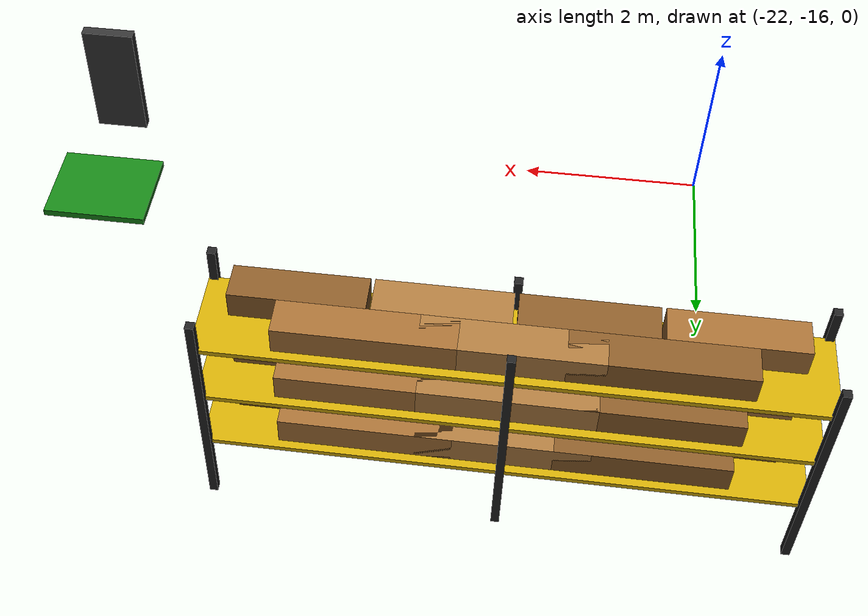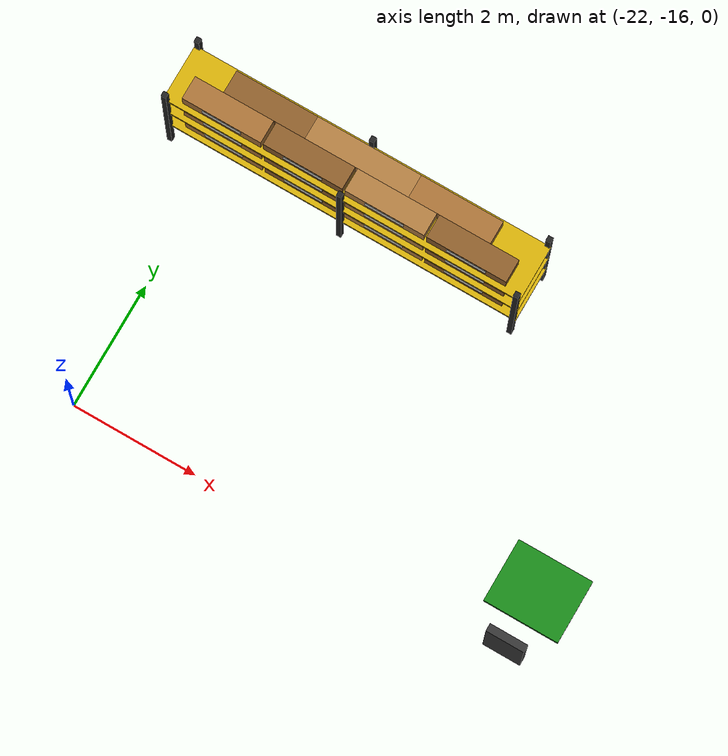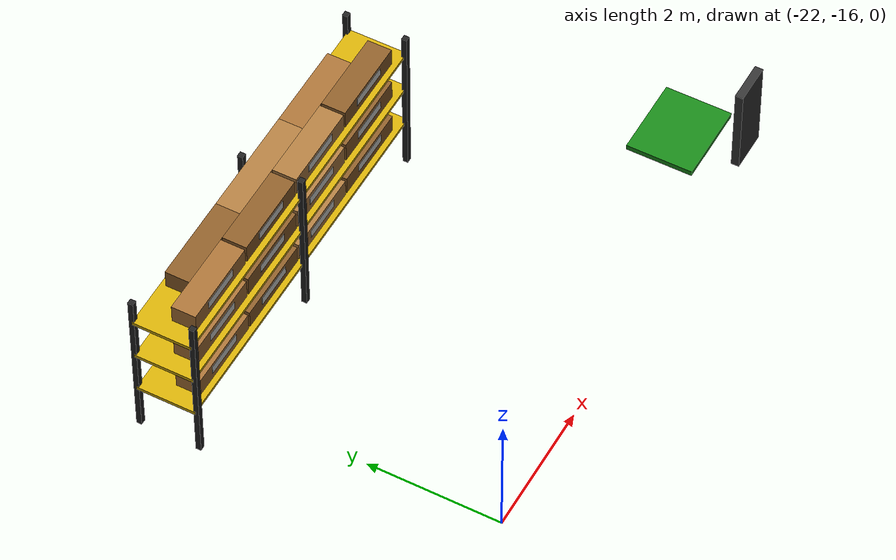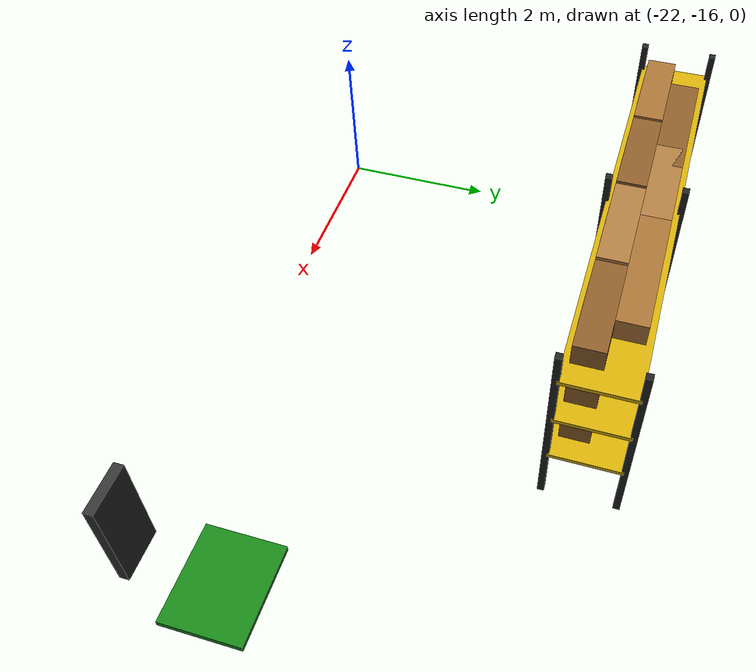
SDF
<sdf version="1.6">
 <world name="aws_industrial_warehouse">
  <model name="shelf_S1">
   <static>true</static>
   <pose>-20 -11.5 0 0 0 0</pose>
   <link name="pFL">
    <pose>-2.8 -0.45 1.25 0 0 0</pose>
    <collision name="c">
     <geometry><box><size>0.08 0.08 2.5</size></box></geometry>
     <surface><friction><ode><mu>1.0</mu><mu2>1.0</mu2></ode></friction></surface>
    </collision>
    <visual name="v">
     <geometry><box><size>0.08 0.08 2.5</size></box></geometry>
     <material><ambient>0.10 0.10 0.10 1</ambient><diffuse>0.13 0.13 0.13 1</diffuse></material>
    </visual>
   </link>
   <link name="pBL">
    <pose>-2.8 0.45 1.25 0 0 0</pose>
    <collision name="c">
     <geometry><box><size>0.08 0.08 2.5</size></box></geometry>
     <surface><friction><ode><mu>1.0</mu><mu2>1.0</mu2></ode></friction></surface>
    </collision>
    <visual name="v">
     <geometry><box><size>0.08 0.08 2.5</size></box></geometry>
     <material><ambient>0.10 0.10 0.10 1</ambient><diffuse>0.13 0.13 0.13 1</diffuse></material>
    </visual>
   </link>
   <link name="pFC">
    <pose>0.0 -0.45 1.25 0 0 0</pose>
    <collision name="c">
     <geometry><box><size>0.08 0.08 2.5</size></box></geometry>
     <surface><friction><ode><mu>1.0</mu><mu2>1.0</mu2></ode></friction></surface>
    </collision>
    <visual name="v">
     <geometry><box><size>0.08 0.08 2.5</size></box></geometry>
     <material><ambient>0.10 0.10 0.10 1</ambient><diffuse>0.13 0.13 0.13 1</diffuse></material>
    </visual>
   </link>
   <link name="pBC">
    <pose>0.0 0.45 1.25 0 0 0</pose>
    <collision name="c">
     <geometry><box><size>0.08 0.08 2.5</size></box></geometry>
     <surface><friction><ode><mu>1.0</mu><mu2>1.0</mu2></ode></friction></surface>
    </collision>
    <visual name="v">
     <geometry><box><size>0.08 0.08 2.5</size></box></geometry>
     <material><ambient>0.10 0.10 0.10 1</ambient><diffuse>0.13 0.13 0.13 1</diffuse></material>
    </visual>
   </link>
   <link name="pFR">
    <pose>2.8 -0.45 1.25 0 0 0</pose>
    <collision name="c">
     <geometry><box><size>0.08 0.08 2.5</size></box></geometry>
     <surface><friction><ode><mu>1.0</mu><mu2>1.0</mu2></ode></friction></surface>
    </collision>
    <visual name="v">
     <geometry><box><size>0.08 0.08 2.5</size></box></geometry>
     <material><ambient>0.10 0.10 0.10 1</ambient><diffuse>0.13 0.13 0.13 1</diffuse></material>
    </visual>
   </link>
   <link name="pBR">
    <pose>2.8 0.45 1.25 0 0 0</pose>
    <collision name="c">
     <geometry><box><size>0.08 0.08 2.5</size></box></geometry>
     <surface><friction><ode><mu>1.0</mu><mu2>1.0</mu2></ode></friction></surface>
    </collision>
    <visual name="v">
     <geometry><box><size>0.08 0.08 2.5</size></box></geometry>
     <material><ambient>0.10 0.10 0.10 1</ambient><diffuse>0.13 0.13 0.13 1</diffuse></material>
    </visual>
   </link>
   <link name="deck1">
    <pose>0 0 0.77 0 0 0</pose>
    <collision name="c">
     <geometry><box><size>5.7 0.88 0.05</size></box></geometry>
     <surface><friction><ode><mu>1.0</mu><mu2>1.0</mu2></ode></friction></surface>
    </collision>
    <visual name="v">
     <geometry><box><size>5.7 0.88 0.05</size></box></geometry>
     <material><ambient>0.70 0.55 0.02 1</ambient><diffuse>0.82 0.67 0.03 1</diffuse></material>
    </visual>
   </link>
   <link name="deck2">
    <pose>0 0 1.45 0 0 0</pose>
    <collision name="c">
     <geometry><box><size>5.7 0.88 0.05</size></box></geometry>
     <surface><friction><ode><mu>1.0</mu><mu2>1.0</mu2></ode></friction></surface>
    </collision>
    <visual name="v">
     <geometry><box><size>5.7 0.88 0.05</size></box></geometry>
     <material><ambient>0.70 0.55 0.02 1</ambient><diffuse>0.82 0.67 0.03 1</diffuse></material>
    </visual>
   </link>
   <link name="deck3">
    <pose>0 0 2.12 0 0 0</pose>
    <collision name="c">
     <geometry><box><size>5.7 0.88 0.05</size></box></geometry>
     <surface><friction><ode><mu>1.0</mu><mu2>1.0</mu2></ode></friction></surface>
    </collision>
    <visual name="v">
     <geometry><box><size>5.7 0.88 0.05</size></box></geometry>
     <material><ambient>0.70 0.55 0.02 1</ambient><diffuse>0.82 0.67 0.03 1</diffuse></material>
    </visual>
   </link>
   <link name="bF1_1">
    <pose>-1.95 -0.18 0.94 0 0 0</pose>
    <visual name="v">
     <geometry><box><size>1.26 0.36 0.28</size></box></geometry>
     <material><ambient>0.58 0.38 0.18 1</ambient><diffuse>0.65 0.44 0.21 1</diffuse></material>
    </visual>
   </link>
   <link name="lF1_1">
    <pose>-1.95 -0.363 0.97 0 0 0</pose>
    <visual name="v">
     <geometry><box><size>0.62 0.005 0.13</size></box></geometry>
     <material><ambient>0.76 0.76 0.74 1</ambient><diffuse>0.83 0.83 0.81 1</diffuse></material>
    </visual>
   </link>
   <link name="bF1_2">
    <pose>-0.65 -0.18 0.94 0 0 0</pose>
    <visual name="v">
     <geometry><box><size>1.26 0.36 0.28</size></box></geometry>
     <material><ambient>0.48 0.30 0.12 1</ambient><diffuse>0.54 0.36 0.16 1</diffuse></material>
    </visual>
   </link>
   <link name="lF1_2">
    <pose>-0.65 -0.363 0.97 0 0 0</pose>
    <visual name="v">
     <geometry><box><size>0.62 0.005 0.13</size></box></geometry>
     <material><ambient>0.76 0.76 0.74 1</ambient><diffuse>0.83 0.83 0.81 1</diffuse></material>
    </visual>
   </link>
   <link name="bF1_3">
    <pose>0.65 -0.18 0.94 0 0 0</pose>
    <visual name="v">
     <geometry><box><size>1.26 0.36 0.28</size></box></geometry>
     <material><ambient>0.62 0.43 0.22 1</ambient><diffuse>0.68 0.48 0.25 1</diffuse></material>
    </visual>
   </link>
   <link name="lF1_3">
    <pose>0.65 -0.363 0.97 0 0 0</pose>
    <visual name="v">
     <geometry><box><size>0.62 0.005 0.13</size></box></geometry>
     <material><ambient>0.76 0.76 0.74 1</ambient><diffuse>0.83 0.83 0.81 1</diffuse></material>
    </visual>
   </link>
   <link name="bF1_4">
    <pose>1.95 -0.18 0.94 0 0 0</pose>
    <visual name="v">
     <geometry><box><size>1.26 0.36 0.28</size></box></geometry>
     <material><ambient>0.48 0.30 0.12 1</ambient><diffuse>0.54 0.36 0.16 1</diffuse></material>
    </visual>
   </link>
   <link name="lF1_4">
    <pose>1.95 -0.363 0.97 0 0 0</pose>
    <visual name="v">
     <geometry><box><size>0.62 0.005 0.13</size></box></geometry>
     <material><ambient>0.76 0.76 0.74 1</ambient><diffuse>0.83 0.83 0.81 1</diffuse></material>
    </visual>
   </link>
   <link name="bB1_1">
    <pose>-1.3 0.18 0.94 0 0 0</pose>
    <visual name="v">
     <geometry><box><size>1.65 0.36 0.3</size></box></geometry>
     <material><ambient>0.48 0.30 0.12 1</ambient><diffuse>0.54 0.36 0.16 1</diffuse></material>
    </visual>
   </link>
   <link name="bB1_2">
    <pose>0.0 0.18 0.94 0 0 0</pose>
    <visual name="v">
     <geometry><box><size>1.65 0.36 0.3</size></box></geometry>
     <material><ambient>0.62 0.43 0.22 1</ambient><diffuse>0.68 0.48 0.25 1</diffuse></material>
    </visual>
   </link>
   <link name="bB1_3">
    <pose>1.3 0.18 0.94 0 0 0</pose>
    <visual name="v">
     <geometry><box><size>1.65 0.36 0.3</size></box></geometry>
     <material><ambient>0.58 0.38 0.18 1</ambient><diffuse>0.65 0.44 0.21 1</diffuse></material>
    </visual>
   </link>
   <link name="bF2_1">
    <pose>-1.95 -0.18 1.62 0 0 0</pose>
    <visual name="v">
     <geometry><box><size>1.26 0.36 0.32</size></box></geometry>
     <material><ambient>0.58 0.38 0.18 1</ambient><diffuse>0.65 0.44 0.21 1</diffuse></material>
    </visual>
   </link>
   <link name="lF2_1">
    <pose>-1.95 -0.363 1.6500000000000001 0 0 0</pose>
    <visual name="v">
     <geometry><box><size>0.62 0.005 0.13</size></box></geometry>
     <material><ambient>0.76 0.76 0.74 1</ambient><diffuse>0.83 0.83 0.81 1</diffuse></material>
    </visual>
   </link>
   <link name="bF2_2">
    <pose>-0.65 -0.18 1.62 0 0 0</pose>
    <visual name="v">
     <geometry><box><size>1.26 0.36 0.32</size></box></geometry>
     <material><ambient>0.48 0.30 0.12 1</ambient><diffuse>0.54 0.36 0.16 1</diffuse></material>
    </visual>
   </link>
   <link name="lF2_2">
    <pose>-0.65 -0.363 1.6500000000000001 0 0 0</pose>
    <visual name="v">
     <geometry><box><size>0.62 0.005 0.13</size></box></geometry>
     <material><ambient>0.76 0.76 0.74 1</ambient><diffuse>0.83 0.83 0.81 1</diffuse></material>
    </visual>
   </link>
   <link name="bF2_3">
    <pose>0.65 -0.18 1.62 0 0 0</pose>
    <visual name="v">
     <geometry><box><size>1.26 0.36 0.32</size></box></geometry>
     <material><ambient>0.62 0.43 0.22 1</ambient><diffuse>0.68 0.48 0.25 1</diffuse></material>
    </visual>
   </link>
   <link name="lF2_3">
    <pose>0.65 -0.363 1.6500000000000001 0 0 0</pose>
    <visual name="v">
     <geometry><box><size>0.62 0.005 0.13</size></box></geometry>
     <material><ambient>0.76 0.76 0.74 1</ambient><diffuse>0.83 0.83 0.81 1</diffuse></material>
    </visual>
   </link>
   <link name="bF2_4">
    <pose>1.95 -0.18 1.62 0 0 0</pose>
    <visual name="v">
     <geometry><box><size>1.26 0.36 0.32</size></box></geometry>
     <material><ambient>0.48 0.30 0.12 1</ambient><diffuse>0.54 0.36 0.16 1</diffuse></material>
    </visual>
   </link>
   <link name="lF2_4">
    <pose>1.95 -0.363 1.6500000000000001 0 0 0</pose>
    <visual name="v">
     <geometry><box><size>0.62 0.005 0.13</size></box></geometry>
     <material><ambient>0.76 0.76 0.74 1</ambient><diffuse>0.83 0.83 0.81 1</diffuse></material>
    </visual>
   </link>
   <link name="bB2_1">
    <pose>-1.3 0.18 1.62 0 0 0</pose>
    <visual name="v">
     <geometry><box><size>1.65 0.36 0.28</size></box></geometry>
     <material><ambient>0.48 0.30 0.12 1</ambient><diffuse>0.54 0.36 0.16 1</diffuse></material>
    </visual>
   </link>
   <link name="bB2_2">
    <pose>0.0 0.18 1.62 0 0 0</pose>
    <visual name="v">
     <geometry><box><size>1.65 0.36 0.28</size></box></geometry>
     <material><ambient>0.62 0.43 0.22 1</ambient><diffuse>0.68 0.48 0.25 1</diffuse></material>
    </visual>
   </link>
   <link name="bB2_3">
    <pose>1.3 0.18 1.62 0 0 0</pose>
    <visual name="v">
     <geometry><box><size>1.65 0.36 0.28</size></box></geometry>
     <material><ambient>0.58 0.38 0.18 1</ambient><diffuse>0.65 0.44 0.21 1</diffuse></material>
    </visual>
   </link>
   <link name="bF3_1">
    <pose>-1.95 -0.18 2.29 0 0 0</pose>
    <visual name="v">
     <geometry><box><size>1.26 0.36 0.28</size></box></geometry>
     <material><ambient>0.58 0.38 0.18 1</ambient><diffuse>0.65 0.44 0.21 1</diffuse></material>
    </visual>
   </link>
   <link name="lF3_1">
    <pose>-1.95 -0.363 2.32 0 0 0</pose>
    <visual name="v">
     <geometry><box><size>0.62 0.005 0.13</size></box></geometry>
     <material><ambient>0.76 0.76 0.74 1</ambient><diffuse>0.83 0.83 0.81 1</diffuse></material>
    </visual>
   </link>
   <link name="bF3_2">
    <pose>-0.65 -0.18 2.29 0 0 0</pose>
    <visual name="v">
     <geometry><box><size>1.26 0.36 0.28</size></box></geometry>
     <material><ambient>0.48 0.30 0.12 1</ambient><diffuse>0.54 0.36 0.16 1</diffuse></material>
    </visual>
   </link>
   <link name="lF3_2">
    <pose>-0.65 -0.363 2.32 0 0 0</pose>
    <visual name="v">
     <geometry><box><size>0.62 0.005 0.13</size></box></geometry>
     <material><ambient>0.76 0.76 0.74 1</ambient><diffuse>0.83 0.83 0.81 1</diffuse></material>
    </visual>
   </link>
   <link name="bF3_3">
    <pose>0.65 -0.18 2.29 0 0 0</pose>
    <visual name="v">
     <geometry><box><size>1.26 0.36 0.28</size></box></geometry>
     <material><ambient>0.62 0.43 0.22 1</ambient><diffuse>0.68 0.48 0.25 1</diffuse></material>
    </visual>
   </link>
   <link name="lF3_3">
    <pose>0.65 -0.363 2.32 0 0 0</pose>
    <visual name="v">
     <geometry><box><size>0.62 0.005 0.13</size></box></geometry>
     <material><ambient>0.76 0.76 0.74 1</ambient><diffuse>0.83 0.83 0.81 1</diffuse></material>
    </visual>
   </link>
   <link name="bF3_4">
    <pose>1.95 -0.18 2.29 0 0 0</pose>
    <visual name="v">
     <geometry><box><size>1.26 0.36 0.28</size></box></geometry>
     <material><ambient>0.48 0.30 0.12 1</ambient><diffuse>0.54 0.36 0.16 1</diffuse></material>
    </visual>
   </link>
   <link name="lF3_4">
    <pose>1.95 -0.363 2.32 0 0 0</pose>
    <visual name="v">
     <geometry><box><size>0.62 0.005 0.13</size></box></geometry>
     <material><ambient>0.76 0.76 0.74 1</ambient><diffuse>0.83 0.83 0.81 1</diffuse></material>
    </visual>
   </link>
   <link name="bB3_1">
    <pose>-1.3 0.18 2.29 0 0 0</pose>
    <visual name="v">
     <geometry><box><size>1.65 0.36 0.28</size></box></geometry>
     <material><ambient>0.48 0.30 0.12 1</ambient><diffuse>0.54 0.36 0.16 1</diffuse></material>
    </visual>
   </link>
   <link name="bB3_2">
    <pose>0.0 0.18 2.29 0 0 0</pose>
    <visual name="v">
     <geometry><box><size>1.65 0.36 0.28</size></box></geometry>
     <material><ambient>0.62 0.43 0.22 1</ambient><diffuse>0.68 0.48 0.25 1</diffuse></material>
    </visual>
   </link>
   <link name="bB3_3">
    <pose>1.3 0.18 2.29 0 0 0</pose>
    <visual name="v">
     <geometry><box><size>1.65 0.36 0.28</size></box></geometry>
     <material><ambient>0.58 0.38 0.18 1</ambient><diffuse>0.65 0.44 0.21 1</diffuse></material>
    </visual>
   </link>
  </model>
  <model name="charging_pad_1">
   <static>true</static>
   <pose>-15 -15 0.04 0 0 0</pose>
   <link name="l">
    <collision name="c">
     <geometry><box><size>1.2 1.0 0.08</size></box></geometry>
     <surface><friction><ode><mu>1.0</mu><mu2>1.0</mu2></ode></friction></surface>
    </collision>
    <visual name="v">
     <geometry><box><size>1.2 1.0 0.08</size></box></geometry>
     <material><ambient>0.06 0.45 0.06 1</ambient><diffuse>0.09 0.52 0.09 1</diffuse></material>
    </visual>
   </link>
  </model>
  <model name="charging_panel_1">
   <static>true</static>
   <pose>-15 -16 0.9 0 0 0</pose>
   <link name="l">
    <collision name="c">
     <geometry><box><size>0.6 0.12 1.4</size></box></geometry>
     <surface><friction><ode><mu>1.0</mu><mu2>1.0</mu2></ode></friction></surface>
    </collision>
    <visual name="v">
     <geometry><box><size>0.6 0.12 1.4</size></box></geometry>
     <material><ambient>0.15 0.15 0.15 1</ambient><diffuse>0.20 0.20 0.20 1</diffuse></material>
    </visual>
   </link>
  </model>
 </world>
</sdf>
